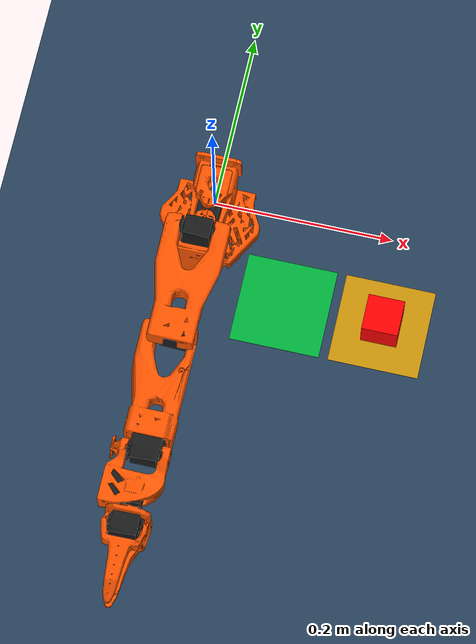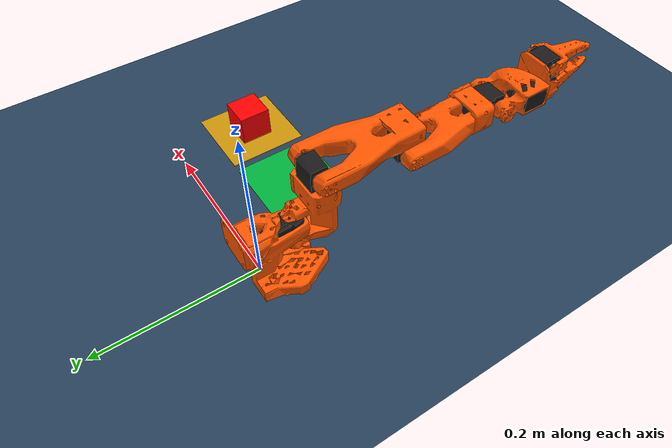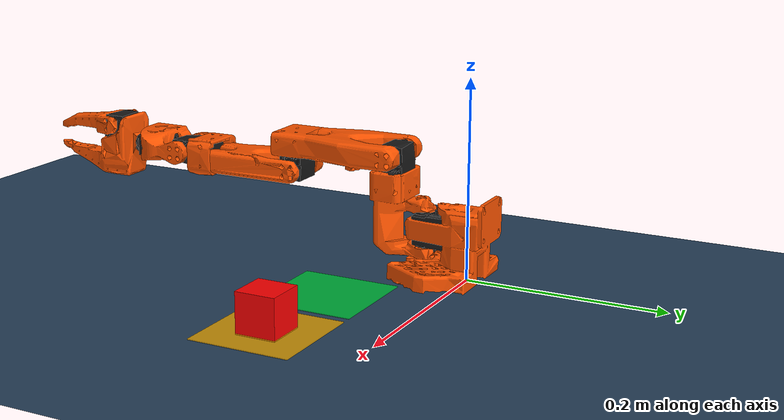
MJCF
<mujoco model="so_arm100 scene with cube and cameras">
  <include file="so_arm100.xml"/>

  <statistic center="0.15 -0.15 0.1" extent="0.4"/>

  <visual>
    <headlight diffuse="0.6 0.6 0.6" ambient="0.3 0.3 0.3" specular="0 0 0"/>
    <rgba haze="0.15 0.25 0.35 1"/>
    <global azimuth="140" elevation="-30"/>
  </visual>

  <asset>
    <texture type="skybox" builtin="gradient" rgb1="0.3 0.5 0.7" rgb2="0 0 0" width="512" height="3072"/>
    <texture type="2d" name="groundplane" builtin="checker" mark="edge" rgb1="0.2 0.3 0.4" rgb2="0.1 0.2 0.3"
      markrgb="0.8 0.8 0.8" width="300" height="300"/>
    <material name="groundplane" texture="groundplane" texuniform="true" texrepeat="5 5" reflectance="0.2"/>
  </asset>

  <worldbody>
    <light pos="0 0 1.5" dir="0 0 -1" directional="true"/>
    <!-- 地面接触调硬: 默认 soft 接触下夹爪合拢会把方块压进地面以下(方块中心下沉 ~8-13mm)。加硬后穿透 < 2mm 且抓取/放置稳定。 -->
    <geom name="floor" size="0 0 0.05" type="plane" material="groundplane"
          solref="0.002 0.02" solimp="0.95 0.99 0.99 0.01 0.001"/>

    <!-- Cube object (默认放在源框中心) -->
    <body name="cube" pos="0.21 -0.10 0.02">
      <freejoint/>
      <geom type="box" size="0.02 0.02 0.02" rgba="1 0 0 1" mass="0.01" friction="3.0 2.0 0.003"/>
    </body>

    <!-- 地面标记方框 (纯视觉, 不参与碰撞):源框 (黄色) / 目标框 (绿色), 均为 0.10m 见方, 半侧 0.05m -->
    <geom name="source_box_marker" type="box" size="0.05 0.05 0.0005"
          pos="0.21 -0.10 0.0005" rgba="1 0.7 0 0.8" contype="0" conaffinity="0"/>
    <geom name="target_box_marker" type="box" size="0.05 0.05 0.0005"
          pos="0.10 -0.10 0.0005" rgba="0 0.85 0.25 0.8" contype="0" conaffinity="0"/>

    <!-- Fixed cameras -->
    <camera name="top_camera" pos="0.1500 -0.1500 0.5000" quat="0.7311 -0.0191 -0.0179 0.6818" mode="fixed"/>
    <camera name="side_camera" pos="0.4063 -0.2189 0.4585" quat="0.6530 0.2713 0.2713 0.6530" mode="fixed"/>
  </worldbody>
</mujoco>

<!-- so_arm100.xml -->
<mujoco model="so_arm100">
  <compiler angle="radian" meshdir="assets/"/>

  <option cone="elliptic" impratio="10"/>

  <asset>
    <material name="orange" rgba="1.0 0.331 0.0 1.0" specular="0.1" shininess="0.1"/>
    <material name="black" rgba="0.1 0.1 0.1 1.0" specular="0.1" shininess="0.1"/>

    <mesh name="Base" file="Base.stl"/>
    <mesh name="Base_Motor" file="Base_Motor.stl"/>
    <mesh name="Rotation_Pitch" file="Rotation_Pitch.stl"/>
    <mesh name="Rotation_Pitch_Motor" file="Rotation_Pitch_Motor.stl"/>
    <mesh name="Upper_Arm" file="Upper_Arm.stl"/>
    <mesh name="Upper_Arm_Motor" file="Upper_Arm_Motor.stl"/>
    <mesh name="Lower_Arm" file="Lower_Arm.stl"/>
    <mesh name="Lower_Arm_Motor" file="Lower_Arm_Motor.stl"/>
    <mesh name="Wrist_Pitch_Roll" file="Wrist_Pitch_Roll.stl"/>
    <mesh name="Wrist_Pitch_Roll_Motor" file="Wrist_Pitch_Roll_Motor.stl"/>
    <mesh name="Fixed_Jaw" file="Fixed_Jaw.stl"/>
    <mesh name="Fixed_Jaw_Motor" file="Fixed_Jaw_Motor.stl"/>
    <mesh name="Fixed_Jaw_Collision_1" file="Fixed_Jaw_Collision_1.stl"/>
    <mesh name="Fixed_Jaw_Collision_2" file="Fixed_Jaw_Collision_2.stl"/>
    <mesh name="Moving_Jaw" file="Moving_Jaw.stl"/>
    <mesh name="Moving_Jaw_Collision_1" file="Moving_Jaw_Collision_1.stl"/>
    <mesh name="Moving_Jaw_Collision_2" file="Moving_Jaw_Collision_2.stl"/>
    <mesh name="Moving_Jaw_Collision_3" file="Moving_Jaw_Collision_3.stl"/>
  </asset>

  <default>
    <default class="so_arm100">
      <joint frictionloss="0.1" armature="0.1"/>
      <position kp="50" dampratio="1" forcerange="-35 35" ctrlrange="-3.14158 3.14158"/>
      <default class="Rotation">
        <joint axis="0 1 0" range="-2.2 2.2"/>
      </default>
      <default class="Pitch">
        <joint axis="1 0 0" range="-3.14158 0.2"/>
      </default>
      <default class="Elbow">
        <joint axis="1 0 0" range="0 3.14158"/>
      </default>
      <default class="Wrist_Pitch">
        <joint axis="1 0 0" range="-2.0 1.8"/>
      </default>
      <default class="Wrist_Roll">
        <joint axis="0 1 0" range="-3.14158 3.14158"/>
      </default>
      <default class="Jaw">
        <joint axis="0 0 1" range="-0.2 2.0"/>
      </default>
      <default class="visual">
        <geom type="mesh" contype="0" conaffinity="0" density="0" group="2" material="orange"/>
        <default class="motor_visual">
          <geom material="black"/>
        </default>
      </default>
      <default class="collision">
        <geom group="3" type="mesh"/>
        <default class="finger_collision">
          <geom type="box" solimp="2 1 0.01" solref="0.01 1" friction="1 0.005 0.0001"/>
        </default>
      </default>
    </default>
  </default>

  <worldbody>
    <body name="Base" childclass="so_arm100">
      <geom type="mesh" mesh="Base" class="visual"/>
      <geom type="mesh" mesh="Base_Motor" class="motor_visual"/>
      <geom type="mesh" mesh="Base" class="collision"/>
      <body name="Rotation_Pitch" pos="0 -0.0452 0.0165" quat="0.707105 0.707108 0 0">
        <inertial pos="-9.07886e-05 0.0590972 0.031089" quat="0.363978 0.441169 -0.623108 0.533504" mass="0.119226"
          diaginertia="5.94278e-05 5.89975e-05 3.13712e-05"/>
        <joint name="Rotation" class="Rotation"/>
        <geom type="mesh" mesh="Rotation_Pitch" class="visual"/>
        <geom type="mesh" mesh="Rotation_Pitch_Motor" class="motor_visual"/>
        <geom type="mesh" mesh="Rotation_Pitch" class="collision"/>
        <body name="Upper_Arm" pos="0 0.1025 0.0306" euler="1.57079 0 0">
          <inertial pos="-1.72052e-05 0.0701802 0.00310545" quat="0.50104 0.498994 -0.493562 0.50632" mass="0.162409"
            diaginertia="0.000213312 0.000167164 7.01522e-05"/>
          <joint name="Pitch" class="Pitch"/>
          <geom type="mesh" mesh="Upper_Arm" class="visual"/>
          <geom type="mesh" mesh="Upper_Arm_Motor" class="motor_visual"/>
          <geom type="mesh" mesh="Upper_Arm" class="collision"/>
          <body name="Lower_Arm" pos="0 0.11257 0.028" euler="-1.57079 0 0">
            <inertial pos="-0.00339604 0.00137796 0.0768007" quat="0.701995 0.0787996 0.0645626 0.704859"
              mass="0.147968" diaginertia="0.000138803 0.000107748 4.84242e-05"/>
            <joint name="Elbow" class="Elbow"/>
            <geom type="mesh" mesh="Lower_Arm" class="visual"/>
            <geom type="mesh" mesh="Lower_Arm_Motor" class="motor_visual"/>
            <geom type="mesh" mesh="Lower_Arm" class="collision"/>
            <body name="Wrist_Pitch_Roll" pos="0 0.0052 0.1349" euler="-1.57079 0 0">
              <inertial pos="-0.00852653 -0.0352279 -2.34622e-05" quat="-0.0522806 0.705235 0.0549524 0.704905"
                mass="0.0661321" diaginertia="3.45403e-05 2.39041e-05 1.94704e-05"/>
              <joint name="Wrist_Pitch" class="Wrist_Pitch"/>
              <geom type="mesh" mesh="Wrist_Pitch_Roll" class="visual"/>
              <geom type="mesh" mesh="Wrist_Pitch_Roll_Motor" class="motor_visual"/>
              <geom type="mesh" mesh="Wrist_Pitch_Roll" class="collision"/>
              <body name="Fixed_Jaw" pos="0 -0.0601 0" euler="0 1.57079 0">
                <inertial pos="0.00552377 -0.0280167 0.000483583" quat="0.41836 0.620891 -0.350644 0.562599"
                  mass="0.0929859" diaginertia="5.03136e-05 4.64098e-05 2.72961e-05"/>
                <joint name="Wrist_Roll" class="Wrist_Roll"/>
                <geom type="mesh" mesh="Fixed_Jaw" class="visual"/>
                <geom type="mesh" mesh="Fixed_Jaw_Motor" class="motor_visual"/>
                <geom type="mesh" mesh="Fixed_Jaw_Collision_1" class="collision"/>
                <geom type="mesh" mesh="Fixed_Jaw_Collision_2" class="collision"/>
                <geom class="finger_collision" name="fixed_jaw_pad_1" size="0.001 0.005 0.004" pos="0.0089 -0.1014 0"/>
                <geom class="finger_collision" name="fixed_jaw_pad_2" size="0.001 0.005 0.006" pos="0.0109 -0.0914 0"/>
                <geom class="finger_collision" name="fixed_jaw_pad_3" size="0.001 0.01 0.007" pos="0.0126 -0.0768 0"/>
                <geom class="finger_collision" name="fixed_jaw_pad_4" size="0.001 0.01 0.008" pos="0.0143 -0.0572 0"/>
                <!-- Wrist camera attached to Fixed_Jaw - moves with the arm -->
                <!-- Camera positioned above the gripper, looking down at workspace -->
                <camera name="wrist_camera" pos="-0.0058 -0.0002 0.0985" quat="0.9574 -0.2888 -0.0088 -0.0027"/>
                <body name="Moving_Jaw" pos="-0.0202 -0.0244 0" quat="1.34924e-11 -3.67321e-06 1 -3.67321e-06">
                  <inertial pos="-0.00161745 -0.0303473 0.000449646" quat="0.696562 0.716737 -0.0239844 -0.0227026"
                    mass="0.0202444" diaginertia="1.11265e-05 8.99651e-06 2.99548e-06"/>
                  <joint name="Jaw" class="Jaw"/>
                  <geom type="mesh" mesh="Moving_Jaw" class="visual"/>
                  <geom type="mesh" mesh="Moving_Jaw_Collision_1" class="collision"/>
                  <geom type="mesh" mesh="Moving_Jaw_Collision_2" class="collision"/>
                  <geom type="mesh" mesh="Moving_Jaw_Collision_3" class="collision"/>
                  <geom class="finger_collision" name="moving_jaw_pad_1" size="0.001 0.005 0.004" pos="-0.0113 -0.077 0"/>
                  <geom class="finger_collision" name="moving_jaw_pad_2" size="0.001 0.005 0.006" pos="-0.0093 -0.067 0"/>
                  <geom class="finger_collision" name="moving_jaw_pad_3" size="0.001 0.01 0.006" pos="-0.0073 -0.055 0"/>
                  <geom class="finger_collision" name="moving_jaw_pad_4" size="0.001 0.01 0.008" pos="-0.0073 -0.035 0"/>
                </body>
              </body>
            </body>
          </body>
        </body>
      </body>
    </body>
  </worldbody>

  <actuator>
    <position class="Rotation" name="Rotation" joint="Rotation"/>
    <position class="Pitch" name="Pitch" joint="Pitch"/>
    <position class="Elbow" name="Elbow" joint="Elbow"/>
    <position class="Wrist_Pitch" name="Wrist_Pitch" joint="Wrist_Pitch"/>
    <position class="Wrist_Roll" name="Wrist_Roll" joint="Wrist_Roll"/>
    <position class="Jaw" name="Jaw" joint="Jaw"/>
  </actuator>

  <contact>
    <exclude body1="Base" body2="Rotation_Pitch"/>
  </contact>

  <keyframe>
    <key name="home" qpos="0 -1.57079 1.57079 1.57079 -1.57079 0" ctrl="0 -1.57079 1.57079 1.57079 -1.57079 0"/>
  </keyframe>
</mujoco>
